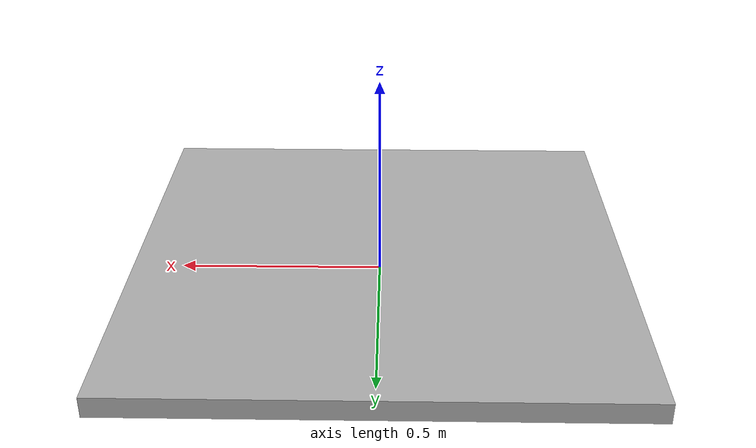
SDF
<?xml version="1.0"?>
<sdf version="1.4">
  <model name="segment_straight">
    <link name='link'>
      <inertial>
        <mass>10</mass>
        <inertia>
          <ixx>0.166667</ixx>
          <ixy>0</ixy>
          <ixz>0</ixz>
          <iyy>0.166667</iyy>
          <iyz>0</iyz>
          <izz>0.166667</izz>
        </inertia>
        <pose frame=''>0 0 0 0 -0 0</pose>
      </inertial>
      <pose frame=''>0 0 0.025 0 -0 0</pose>
      <gravity>1</gravity>
      <self_collide>0</self_collide>
      <kinematic>0</kinematic>
      <enable_wind>0</enable_wind>
      <visual name='visual'>
        <pose frame=''>0 0 0 0 -0 0</pose>
        <geometry>
          <box>
            <size>1.21 1.21 0.05</size>
          </box>
        </geometry>
        <material>
          <lighting>1</lighting>
          <script>
            <uri>model://racecar_description/models/segment_straight/materials/scripts/segment_straight.material</uri>
            <name>SegmentStraight/Image</name>
          </script>
          <shader type='vertex'>
            <normal_map>__default__</normal_map>
          </shader>
          <ambient>0.3 0.3 0.3 1</ambient>
          <diffuse>0.7 0.7 0.7 1</diffuse>
          <specular>0.01 0.01 0.01 1</specular>
          <emissive>0 0 0 1</emissive>
        </material>
        <transparency>0</transparency>
        <cast_shadows>1</cast_shadows>
      </visual>
      <collision name='collision'>
        <laser_retro>0</laser_retro>
        <max_contacts>10</max_contacts>
        <pose frame=''>0 0 0 0 -0 0</pose>
        <geometry>
          <box>
            <size>1.21 1.21 0.05</size>
          </box>
        </geometry>
      </collision>
    </link>
    <static>1</static>
    <allow_auto_disable>1</allow_auto_disable>
  </model>
</sdf>
